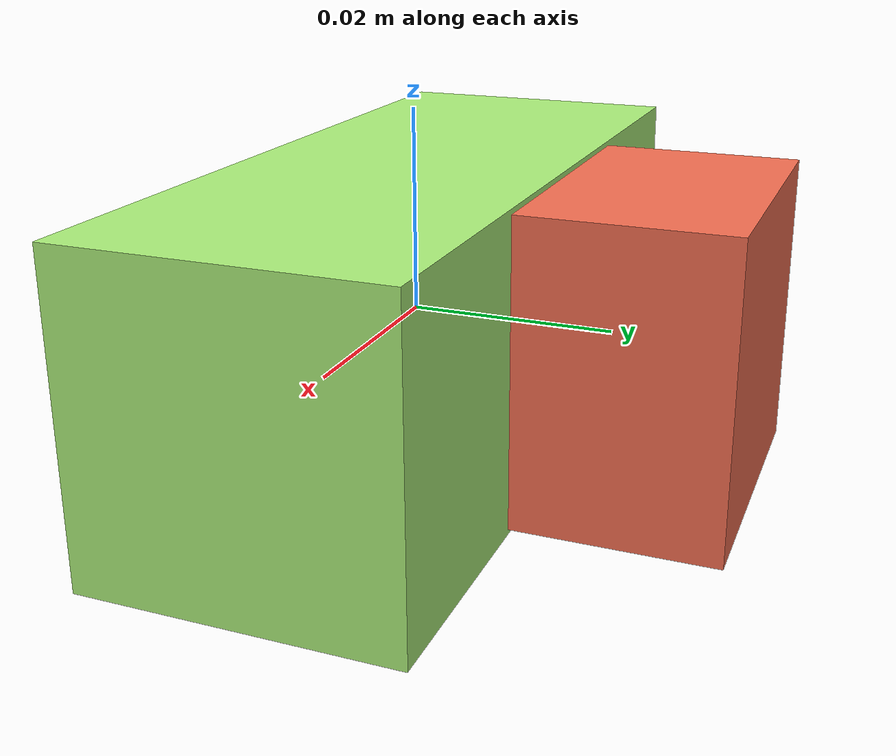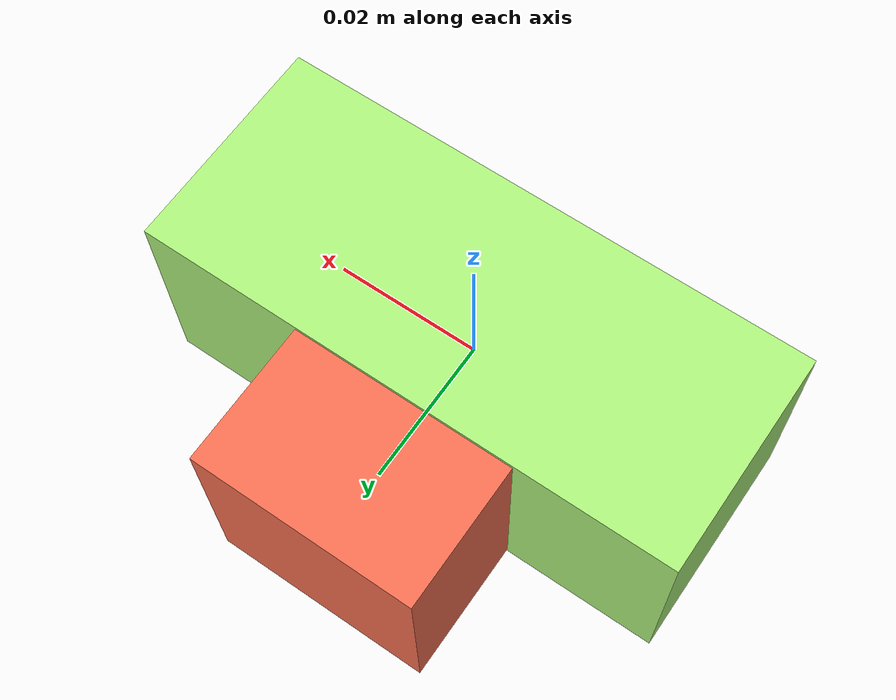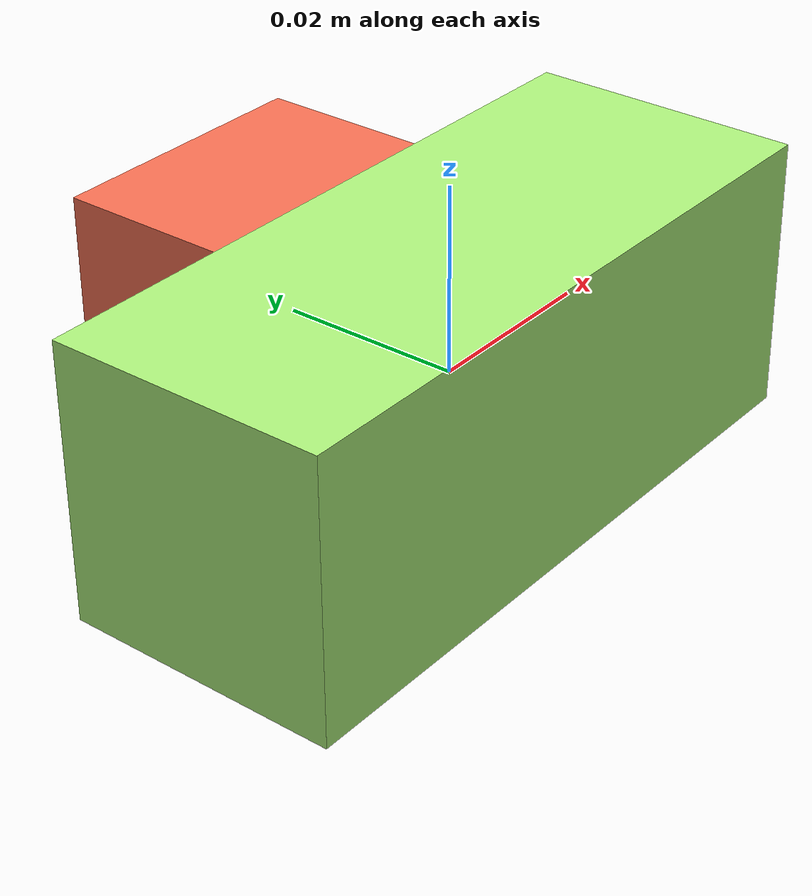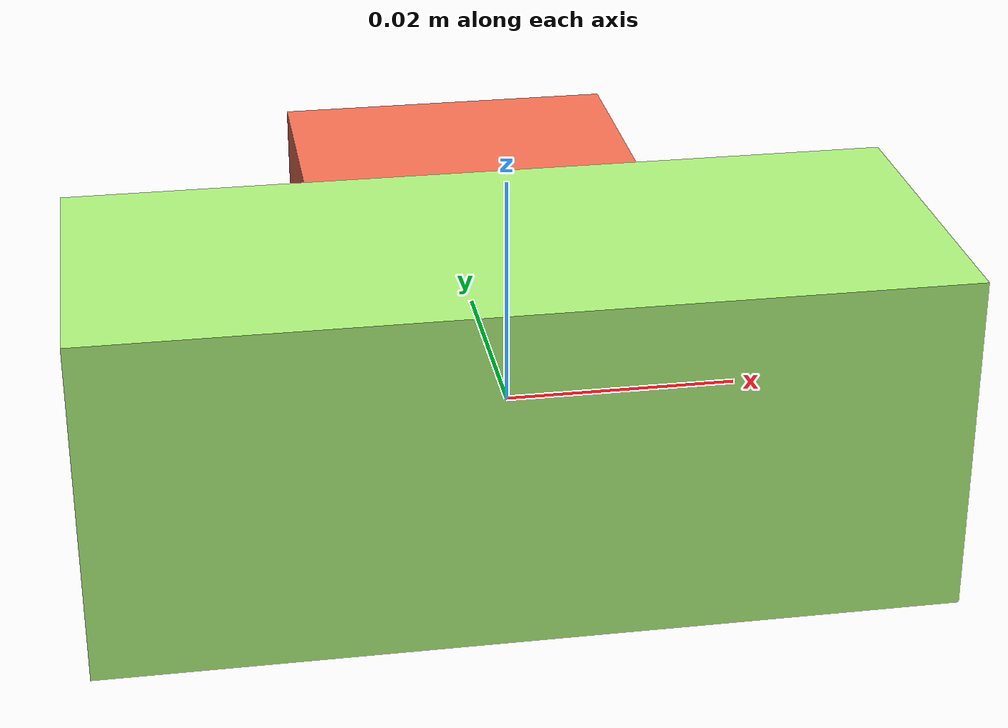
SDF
<sdf version="1.4"><world name="default"><model name="object0"><link name="link1"><pose>0 0 0 0 0 0</pose><inertial><pose>0 0 0 0 0 0</pose><mass>0.03962509963998621</mass><inertia><ixx>5.943764945997931e-06</ixx><ixy>0</ixy><iyy>2.0752315604336377e-05</iyy><ixz>0</ixz><iyz>0</iyz><izz>2.0752315604336377e-05</izz></inertia></inertial><visual name="link1_visual"><pose>0 0  0 0 0 0</pose><geometry><box><size>0.07337981414812261 0.03 0.03</size></box></geometry><material><diffuse>0.6769269515697521 0.9445004897081739 0.47939771686119037 1</diffuse></material></visual><collision><pose>0 0  0 0 0 0</pose><geometry><box><size>0.07337981414812261 0.03 0.03</size></box></geometry></collision></link><link name="link2"><pose>-0.0004767822005838883 0.016766770405329756 0 0 0 0</pose><inertial><pose>0 0 0 0 0 0</pose><mass>0.018821390597875937</mass><inertia><ixx>3.2244666526305207e-06</ixx><ixy>0</ixy><iyy>2.7306700859085e-06</iyy><ixz>0</ixz><iyz>0</iyz><izz>3.3170051564034115e-06</izz></inertia></inertial><visual name="link2_visual"><pose>0 0  0 0 0 0</pose><geometry><box><size>0.03 0.03485442703310359 0.028999999999999998</size></box></geometry><material><diffuse>0.9630075525710453 0.43569952052546873 0.3201708691176994 1</diffuse></material></visual><collision><pose>0 0  0 0 0 0</pose><geometry><box><size>0.03 0.03485442703310359 0.028999999999999998</size></box></geometry></collision></link><joint name="link_joint_0" type="fixed"><parent>link1</parent><child>link2</child><pose>0 0 0 0 0 0</pose><axis><xyz>0 0 1</xyz></axis></joint></model></world></sdf>
